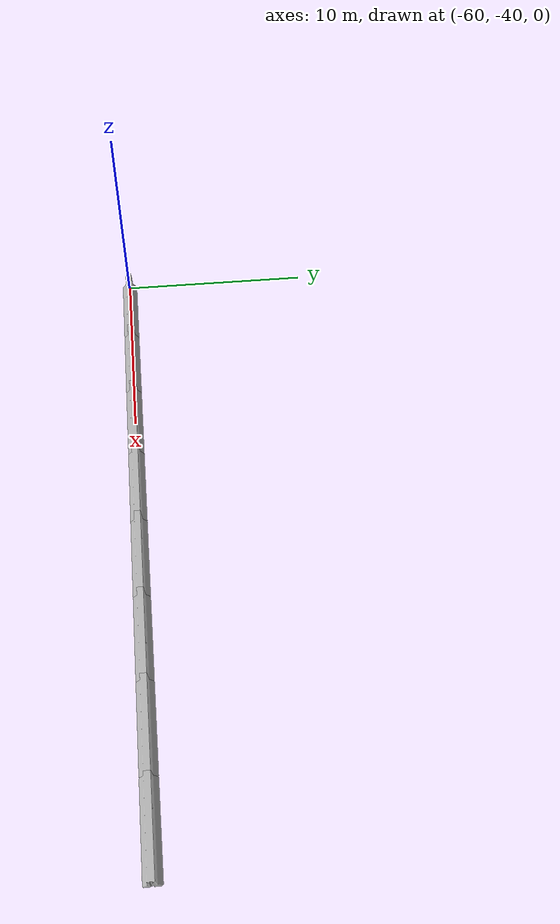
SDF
<sdf version="1.4">
 <world name="default">
  <include><uri>model://sun</uri></include>
  <model name="jersey_barrier_98">
   <pose>-30 -40 0 0 0 0</pose>
   <static>1</static>
   <link name="link">
    <visual name="visual">
     <geometry><mesh><uri>model://jersey_barrier/meshes/jersey_barrier.dae</uri></mesh></geometry>
    </visual>
    <collision name="upright">
     <pose>0 0 0.5715 0 -0 0</pose>
     <geometry><box><size>4.06542 0.3063 1.143</size></box></geometry>
    </collision>
    <collision name="base">
     <pose>0 0 0.032258 0 -0 0</pose>
     <geometry><box><size>4.06542 0.8107 0.064516</size></box></geometry>
    </collision>
    <collision name="base2">
     <pose>0 0 0.1 0 -0 0</pose>
     <geometry><box><size>4.06542 0.65 0.1</size></box></geometry>
    </collision>
    <collision name="base3">
     <pose>0 0 0.2 0 -0 0</pose>
     <geometry><box><size>4.06542 0.5 0.1</size></box></geometry>
    </collision>
    <collision name="left-angle">
     <pose>0 -0.224 0.2401 0.9 -0 0</pose>
     <geometry><box><size>4.06542 0.5 0.064516</size></box></geometry>
    </collision>
    <collision name="right-angle">
     <pose>0 0.224 0.2401 -0.9 0 0</pose>
     <geometry><box><size>4.06542 0.5 0.064516</size></box></geometry>
    </collision>
    <velocity_decay><linear>0</linear><angular>0</angular></velocity_decay>
   </link>
   <pose>2.45495 0 0 0 -0 0</pose>
  </model>
  <model name="jersey_barrier_99">
   <pose>-34 -40 0 0 0 0</pose>
   <static>1</static>
   <link name="link">
    <visual name="visual">
     <geometry><mesh><uri>model://jersey_barrier/meshes/jersey_barrier.dae</uri></mesh></geometry>
    </visual>
    <collision name="upright">
     <pose>0 0 0.5715 0 -0 0</pose>
     <geometry><box><size>4.06542 0.3063 1.143</size></box></geometry>
    </collision>
    <collision name="base">
     <pose>0 0 0.032258 0 -0 0</pose>
     <geometry><box><size>4.06542 0.8107 0.064516</size></box></geometry>
    </collision>
    <collision name="base2">
     <pose>0 0 0.1 0 -0 0</pose>
     <geometry><box><size>4.06542 0.65 0.1</size></box></geometry>
    </collision>
    <collision name="base3">
     <pose>0 0 0.2 0 -0 0</pose>
     <geometry><box><size>4.06542 0.5 0.1</size></box></geometry>
    </collision>
    <collision name="left-angle">
     <pose>0 -0.224 0.2401 0.9 -0 0</pose>
     <geometry><box><size>4.06542 0.5 0.064516</size></box></geometry>
    </collision>
    <collision name="right-angle">
     <pose>0 0.224 0.2401 -0.9 0 0</pose>
     <geometry><box><size>4.06542 0.5 0.064516</size></box></geometry>
    </collision>
    <velocity_decay><linear>0</linear><angular>0</angular></velocity_decay>
   </link>
   <pose>-10 -2 0 0 -0 0</pose>
  </model>
  <model name="jersey_barrier_100">
   <pose>-38 -40 0 0 0 0</pose>
   <static>1</static>
   <link name="link">
    <visual name="visual">
     <geometry><mesh><uri>model://jersey_barrier/meshes/jersey_barrier.dae</uri></mesh></geometry>
    </visual>
    <collision name="upright">
     <pose>0 0 0.5715 0 -0 0</pose>
     <geometry><box><size>4.06542 0.3063 1.143</size></box></geometry>
    </collision>
    <collision name="base">
     <pose>0 0 0.032258 0 -0 0</pose>
     <geometry><box><size>4.06542 0.8107 0.064516</size></box></geometry>
    </collision>
    <collision name="base2">
     <pose>0 0 0.1 0 -0 0</pose>
     <geometry><box><size>4.06542 0.65 0.1</size></box></geometry>
    </collision>
    <collision name="base3">
     <pose>0 0 0.2 0 -0 0</pose>
     <geometry><box><size>4.06542 0.5 0.1</size></box></geometry>
    </collision>
    <collision name="left-angle">
     <pose>0 -0.224 0.2401 0.9 -0 0</pose>
     <geometry><box><size>4.06542 0.5 0.064516</size></box></geometry>
    </collision>
    <collision name="right-angle">
     <pose>0 0.224 0.2401 -0.9 0 0</pose>
     <geometry><box><size>4.06542 0.5 0.064516</size></box></geometry>
    </collision>
    <velocity_decay><linear>0</linear><angular>0</angular></velocity_decay>
   </link>
   <pose>-9.55113 3 0 0 -0 0</pose>
  </model>
  <model name="jersey_barrier_101">
   <pose>-42 -40 0 0 0 0</pose>
   <static>1</static>
   <link name="link">
    <visual name="visual">
     <geometry><mesh><uri>model://jersey_barrier/meshes/jersey_barrier.dae</uri></mesh></geometry>
    </visual>
    <collision name="upright">
     <pose>0 0 0.5715 0 -0 0</pose>
     <geometry><box><size>4.06542 0.3063 1.143</size></box></geometry>
    </collision>
    <collision name="base">
     <pose>0 0 0.032258 0 -0 0</pose>
     <geometry><box><size>4.06542 0.8107 0.064516</size></box></geometry>
    </collision>
    <collision name="base2">
     <pose>0 0 0.1 0 -0 0</pose>
     <geometry><box><size>4.06542 0.65 0.1</size></box></geometry>
    </collision>
    <collision name="base3">
     <pose>0 0 0.2 0 -0 0</pose>
     <geometry><box><size>4.06542 0.5 0.1</size></box></geometry>
    </collision>
    <collision name="left-angle">
     <pose>0 -0.224 0.2401 0.9 -0 0</pose>
     <geometry><box><size>4.06542 0.5 0.064516</size></box></geometry>
    </collision>
    <collision name="right-angle">
     <pose>0 0.224 0.2401 -0.9 0 0</pose>
     <geometry><box><size>4.06542 0.5 0.064516</size></box></geometry>
    </collision>
    <velocity_decay><linear>0</linear><angular>0</angular></velocity_decay>
   </link>
   <pose>9 -8 0 0 -0 0</pose>
  </model>
  <model name="jersey_barrier_102">
   <pose>-46 -40 0 0 0 0</pose>
   <static>1</static>
   <link name="link">
    <visual name="visual">
     <geometry><mesh><uri>model://jersey_barrier/meshes/jersey_barrier.dae</uri></mesh></geometry>
    </visual>
    <collision name="upright">
     <pose>0 0 0.5715 0 -0 0</pose>
     <geometry><box><size>4.06542 0.3063 1.143</size></box></geometry>
    </collision>
    <collision name="base">
     <pose>0 0 0.032258 0 -0 0</pose>
     <geometry><box><size>4.06542 0.8107 0.064516</size></box></geometry>
    </collision>
    <collision name="base2">
     <pose>0 0 0.1 0 -0 0</pose>
     <geometry><box><size>4.06542 0.65 0.1</size></box></geometry>
    </collision>
    <collision name="base3">
     <pose>0 0 0.2 0 -0 0</pose>
     <geometry><box><size>4.06542 0.5 0.1</size></box></geometry>
    </collision>
    <collision name="left-angle">
     <pose>0 -0.224 0.2401 0.9 -0 0</pose>
     <geometry><box><size>4.06542 0.5 0.064516</size></box></geometry>
    </collision>
    <collision name="right-angle">
     <pose>0 0.224 0.2401 -0.9 0 0</pose>
     <geometry><box><size>4.06542 0.5 0.064516</size></box></geometry>
    </collision>
    <velocity_decay><linear>0</linear><angular>0</angular></velocity_decay>
   </link>
   <pose>10 7 0 0 -0 0</pose>
  </model>
  <model name="jersey_barrier_103">
   <pose>-50 -40 0 0 0 0</pose>
   <static>1</static>
   <link name="link">
    <visual name="visual">
     <geometry><mesh><uri>model://jersey_barrier/meshes/jersey_barrier.dae</uri></mesh></geometry>
    </visual>
    <collision name="upright">
     <pose>0 0 0.5715 0 -0 0</pose>
     <geometry><box><size>4.06542 0.3063 1.143</size></box></geometry>
    </collision>
    <collision name="base">
     <pose>0 0 0.032258 0 -0 0</pose>
     <geometry><box><size>4.06542 0.8107 0.064516</size></box></geometry>
    </collision>
    <collision name="base2">
     <pose>0 0 0.1 0 -0 0</pose>
     <geometry><box><size>4.06542 0.65 0.1</size></box></geometry>
    </collision>
    <collision name="base3">
     <pose>0 0 0.2 0 -0 0</pose>
     <geometry><box><size>4.06542 0.5 0.1</size></box></geometry>
    </collision>
    <collision name="left-angle">
     <pose>0 -0.224 0.2401 0.9 -0 0</pose>
     <geometry><box><size>4.06542 0.5 0.064516</size></box></geometry>
    </collision>
    <collision name="right-angle">
     <pose>0 0.224 0.2401 -0.9 0 0</pose>
     <geometry><box><size>4.06542 0.5 0.064516</size></box></geometry>
    </collision>
    <velocity_decay><linear>0</linear><angular>0</angular></velocity_decay>
   </link>
   <pose>-9 7.4858 0 0 -0 0</pose>
  </model>
  <model name="jersey_barrier_104">
   <pose>-54 -40 0 0 0 0</pose>
   <static>1</static>
   <link name="link">
    <visual name="visual">
     <geometry><mesh><uri>model://jersey_barrier/meshes/jersey_barrier.dae</uri></mesh></geometry>
    </visual>
    <collision name="upright">
     <pose>0 0 0.5715 0 -0 0</pose>
     <geometry><box><size>4.06542 0.3063 1.143</size></box></geometry>
    </collision>
    <collision name="base">
     <pose>0 0 0.032258 0 -0 0</pose>
     <geometry><box><size>4.06542 0.8107 0.064516</size></box></geometry>
    </collision>
    <collision name="base2">
     <pose>0 0 0.1 0 -0 0</pose>
     <geometry><box><size>4.06542 0.65 0.1</size></box></geometry>
    </collision>
    <collision name="base3">
     <pose>0 0 0.2 0 -0 0</pose>
     <geometry><box><size>4.06542 0.5 0.1</size></box></geometry>
    </collision>
    <collision name="left-angle">
     <pose>0 -0.224 0.2401 0.9 -0 0</pose>
     <geometry><box><size>4.06542 0.5 0.064516</size></box></geometry>
    </collision>
    <collision name="right-angle">
     <pose>0 0.224 0.2401 -0.9 0 0</pose>
     <geometry><box><size>4.06542 0.5 0.064516</size></box></geometry>
    </collision>
    <velocity_decay><linear>0</linear><angular>0</angular></velocity_decay>
   </link>
   <pose>2.45495 0 0 0 -0 0</pose>
  </model>
  <model name="jersey_barrier_105">
   <pose>-58 -40 0 0 0 0</pose>
   <static>1</static>
   <link name="link">
    <visual name="visual">
     <geometry><mesh><uri>model://jersey_barrier/meshes/jersey_barrier.dae</uri></mesh></geometry>
    </visual>
    <collision name="upright">
     <pose>0 0 0.5715 0 -0 0</pose>
     <geometry><box><size>4.06542 0.3063 1.143</size></box></geometry>
    </collision>
    <collision name="base">
     <pose>0 0 0.032258 0 -0 0</pose>
     <geometry><box><size>4.06542 0.8107 0.064516</size></box></geometry>
    </collision>
    <collision name="base2">
     <pose>0 0 0.1 0 -0 0</pose>
     <geometry><box><size>4.06542 0.65 0.1</size></box></geometry>
    </collision>
    <collision name="base3">
     <pose>0 0 0.2 0 -0 0</pose>
     <geometry><box><size>4.06542 0.5 0.1</size></box></geometry>
    </collision>
    <collision name="left-angle">
     <pose>0 -0.224 0.2401 0.9 -0 0</pose>
     <geometry><box><size>4.06542 0.5 0.064516</size></box></geometry>
    </collision>
    <collision name="right-angle">
     <pose>0 0.224 0.2401 -0.9 0 0</pose>
     <geometry><box><size>4.06542 0.5 0.064516</size></box></geometry>
    </collision>
    <velocity_decay><linear>0</linear><angular>0</angular></velocity_decay>
   </link>
   <pose>2.45495 0 0 0 -0 0</pose>
  </model>
 </world>
</sdf>
